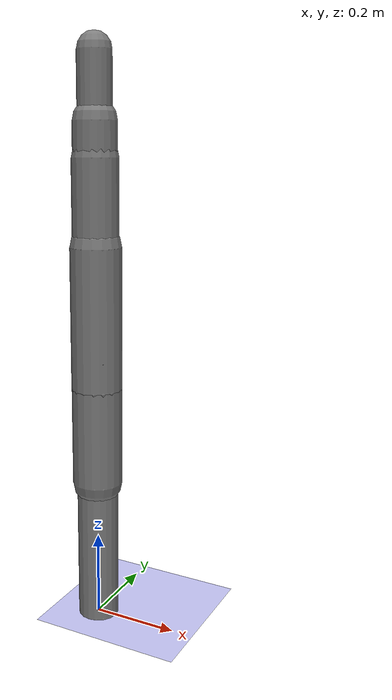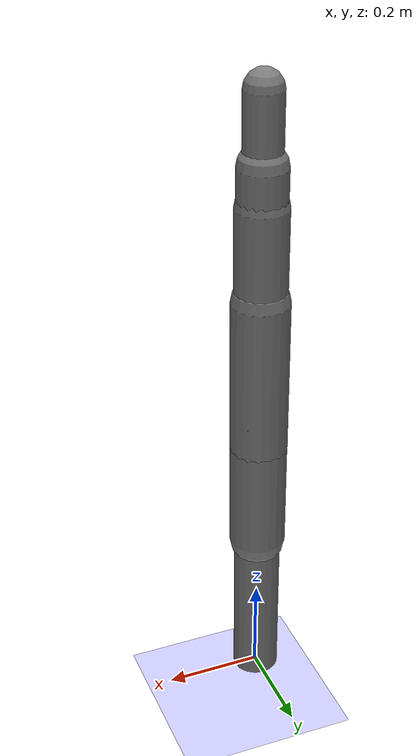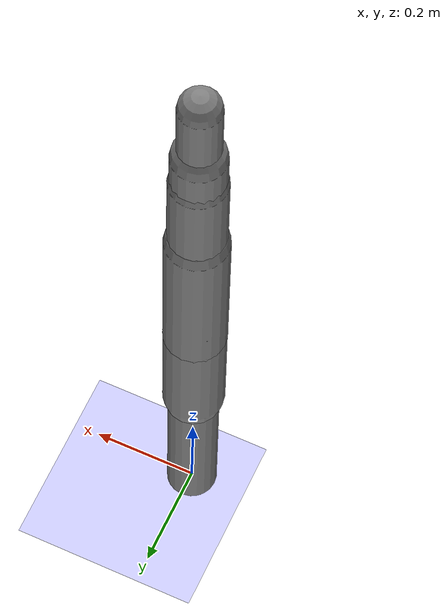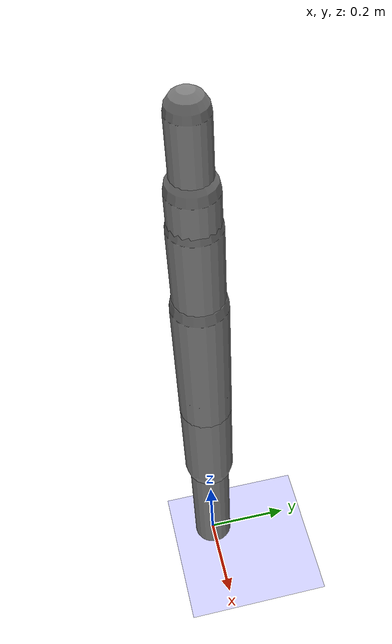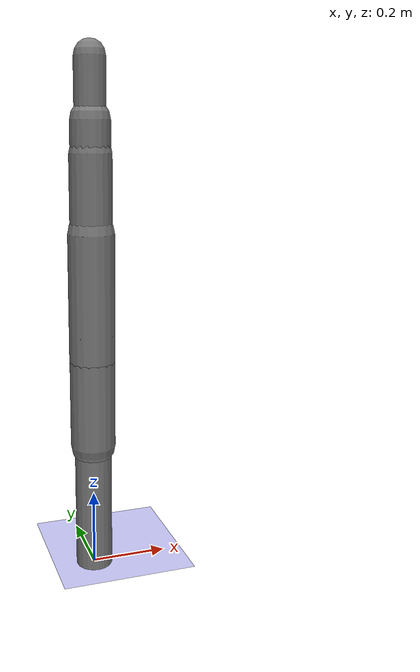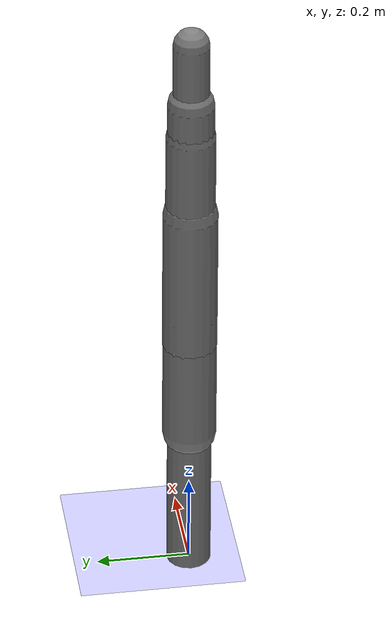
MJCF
<?xml version='1.0' encoding='UTF-8'?>
<mujoco model="robot_model">
  <worldbody>
    <light name="light" pos="0 -3 10" dir="0 0.5 -1" diffuse=".8 .8 .8" specular="0.1 0.1 0.1"/>
    <geom name="floor" type="plane" size="10.0 10.0 0.1" pos="0 0 0" rgba="0.8 0.8 1 1" contype="2" conaffinity="1"/>
    <body name="limb0" pos="0 0 0">
      <geom type="capsule" fromto="0 0 0 0 0 0.5489442453316271" size="0.048062771100308974" density="763.837501313393" contype="1" conaffinity="2"/>
      <site type="sphere" size="0.01" name="limb0_site0" pos="0 0 0.3404626053611049"/>
      <site type="sphere" size="0.01" name="limb0_site1" pos="0 0 0.4981430591874476"/>
      <site type="sphere" size="0.01" name="limb0_site2" pos="0 0 0.3949111147589035"/>
      <freejoint name="limb0_root"/>
      <body name="limb1" pos="0 0 0.3404626053611049">
        <geom type="capsule" fromto="0 0 0 0 0 0.2999583254750588" size="0.058183619747629485" density="740.1828998792604" contype="1" conaffinity="2"/>
        <site type="sphere" size="0.01" name="limb1_site0" pos="0 0 0.07982799083501751"/>
        <body name="limb2" pos="0 0 0.07982799083501751">
          <geom type="capsule" fromto="0 0 0 0 0 0.42075223148732316" size="0.029294916785572153" density="1138.8241278267756" contype="1" conaffinity="2"/>
          <site type="sphere" size="0.01" name="limb2_site0" pos="0 0 0.08379767948799274"/>
          <site type="sphere" size="0.01" name="limb2_site1" pos="0 0 0.3673296701470177"/>
          <body name="limb3" pos="0 0 0.08379767948799274">
            <geom type="capsule" fromto="0 0 0 0 0 0.44725352205808966" size="0.03564490912095247" density="1041.1841761778296" contype="1" conaffinity="2"/>
            <joint name="joint_limb2_limb3_0" type="hinge" axis="0 0 1" range="-21.018842365176642 21.018842365176642" damping="5.0"/>
          </body>
          <body name="limb4" pos="0 0 0.3673296701470177">
            <geom type="capsule" fromto="0 0 0 0 0 0.378171156067034" size="0.04960379875638113" density="1020.0145094172238" contype="1" conaffinity="2"/>
            <joint name="joint_limb2_limb4_0" type="hinge" axis="1 0 0" range="-38.680136556965635 38.680136556965635" damping="5.0"/>
          </body>
          <joint name="joint_limb1_limb2_0" type="hinge" axis="0 1 0" range="-64.93935351226119 64.93935351226119" damping="5.0"/>
        </body>
        <joint name="joint_limb0_limb1_0" type="hinge" axis="0 1 0" range="-119.50965052353241 119.50965052353241" damping="5.0"/>
      </body>
      <body name="limb5" pos="0 0 0.4981430591874476">
        <geom type="capsule" fromto="0 0 0 0 0 0.2989690781950476" size="0.050309153812331656" density="823.4497281574163" contype="1" conaffinity="2"/>
        <site type="sphere" size="0.01" name="limb5_site0" pos="0 0 0.07225356546491618"/>
        <site type="sphere" size="0.01" name="limb5_site1" pos="0 0 0.2420784842792399"/>
        <body name="limb6" pos="0 0 0.07225356546491618">
          <geom type="capsule" fromto="0 0 0 0 0 0.3248927368913828" size="0.0586424832313628" density="607.0916745367458" contype="1" conaffinity="2"/>
          <site type="sphere" size="0.01" name="limb6_site0" pos="0 0 0.27985994762634087"/>
          <site type="sphere" size="0.01" name="limb6_site1" pos="0 0 0.3017366783176293"/>
          <body name="limb7" pos="0 0 0.27985994762634087">
            <geom type="capsule" fromto="0 0 0 0 0 0.2382089942244294" size="0.05271733776593019" density="953.4100928451663" contype="1" conaffinity="2"/>
            <joint name="joint_limb6_limb7_0" type="hinge" axis="1 0 0" range="-110.66857311312557 110.66857311312557" damping="5.0"/>
          </body>
          <body name="limb8" pos="0 0 0.3017366783176293">
            <geom type="capsule" fromto="0 0 0 0 0 0.43740454365124354" size="0.03854550212722826" density="501.89877855324744" contype="1" conaffinity="2"/>
            <joint name="joint_limb6_limb8_0" type="hinge" axis="1 0 0" range="-97.99919740632275 97.99919740632275" damping="5.0"/>
          </body>
          <joint name="joint_limb5_limb6_0" type="hinge" axis="0 1 0" range="-120.0 120.0" damping="5.0"/>
        </body>
        <body name="limb9" pos="0 0 0.2420784842792399">
          <geom type="capsule" fromto="0 0 0 0 0 0.33444922592509313" size="0.0315332302803031" density="843.2724017386142" contype="1" conaffinity="2"/>
          <joint name="joint_limb5_limb9_0" type="hinge" axis="1 0 0" range="-76.04759520061859 76.04759520061859" damping="5.0"/>
        </body>
        <joint name="joint_limb0_limb5_0" type="hinge" axis="0 1 0" range="-61.46558493556708 61.46558493556708" damping="5.0"/>
      </body>
      <body name="limb10" pos="0 0 0.3949111147589035">
        <geom type="capsule" fromto="0 0 0 0 0 0.3390209356510857" size="0.056972380129968095" density="679.5462153507075" contype="1" conaffinity="2"/>
        <joint name="joint_limb0_limb10_0" type="hinge" axis="0 1 0" range="-70.09278934611551 70.09278934611551" damping="5.0"/>
      </body>
    </body>
  </worldbody>
  <actuator>
    <position name="position_actuator_joint_limb0_limb1_0" joint="joint_limb0_limb1_0" gear="1.923415512406648" inheritrange="1" kp="100.0"/>
    <position name="position_actuator_joint_limb1_limb2_0" joint="joint_limb1_limb2_0" gear="0.8397811922170415" inheritrange="1" kp="100.0"/>
    <position name="position_actuator_joint_limb2_limb3_0" joint="joint_limb2_limb3_0" gear="1.9828456855719456" inheritrange="1" kp="100.0"/>
    <position name="position_actuator_joint_limb2_limb4_0" joint="joint_limb2_limb4_0" gear="1.5727331217504008" inheritrange="1" kp="100.0"/>
    <position name="position_actuator_joint_limb0_limb5_0" joint="joint_limb0_limb5_0" gear="1.601725357683094" inheritrange="1" kp="100.0"/>
    <position name="position_actuator_joint_limb5_limb6_0" joint="joint_limb5_limb6_0" gear="0.7587513588861756" inheritrange="1" kp="100.0"/>
    <position name="position_actuator_joint_limb6_limb7_0" joint="joint_limb6_limb7_0" gear="0.5200324229517321" inheritrange="1" kp="100.0"/>
    <position name="position_actuator_joint_limb6_limb8_0" joint="joint_limb6_limb8_0" gear="1.0804339914187346" inheritrange="1" kp="100.0"/>
    <position name="position_actuator_joint_limb5_limb9_0" joint="joint_limb5_limb9_0" gear="0.9326318216468157" inheritrange="1" kp="100.0"/>
    <position name="position_actuator_joint_limb0_limb10_0" joint="joint_limb0_limb10_0" gear="1.061198588441178" inheritrange="1" kp="100.0"/>
  </actuator>
</mujoco>
